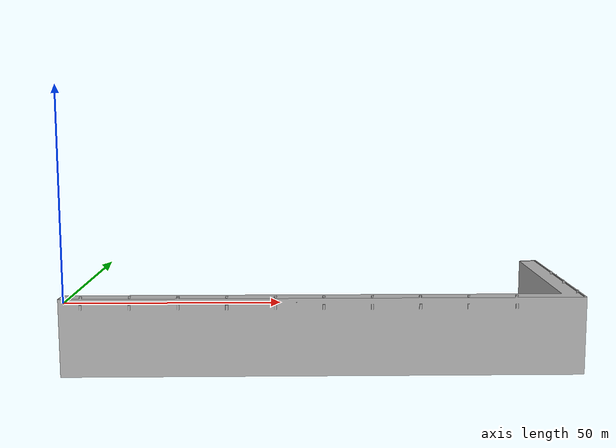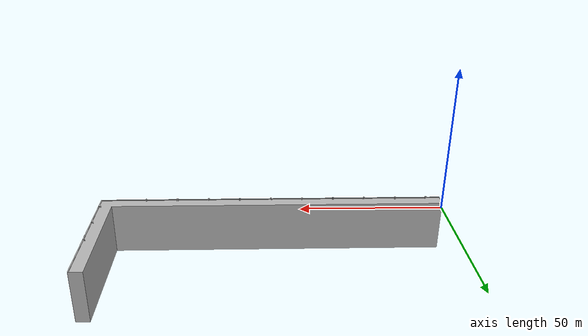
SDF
<?xml version="1.0" ?>
<sdf version="1.9">
  <model name="outer_breakwater">
    <static>true</static>
    <link name="quay_link">
      <!-- Arm 1 Collision (Along X) -->
      <collision name="arm1_collision">
        <pose>57.7500 -2.2500 -7.1000 0 0 0</pose>
        <geometry>
          <box>
            <size>115.5000 4.5000 18.2000</size>
          </box>
        </geometry>
        <surface>
          <friction>
            <ode>
              <mu>0.9</mu>
              <mu2>0.9</mu2>
            </ode>
          </friction>
        </surface>
      </collision>

      <!-- Arm 2 Collision (Along Y) -->
      <collision name="arm2_collision">
        <pose>117.7500 17.7500 -7.1000 0 0 0</pose>
        <geometry>
          <box>
            <size>4.5000 44.5000 18.2000</size>
          </box>
        </geometry>
        <surface>
          <friction>
            <ode>
              <mu>0.9</mu>
              <mu2>0.9</mu2>
            </ode>
          </friction>
        </surface>
      </collision>

      <!-- High-Fidelity Photorealistic Visual Mesh -->
      <visual name="quay_visual">
        <pose>0 0 0 0 0 0</pose>
        <geometry>
          <mesh>
            <uri>model://outer_breakwater/meshes/outer_breakwater.obj</uri>
          </mesh>
        </geometry>
      </visual>
    </link>
  </model>
</sdf>
